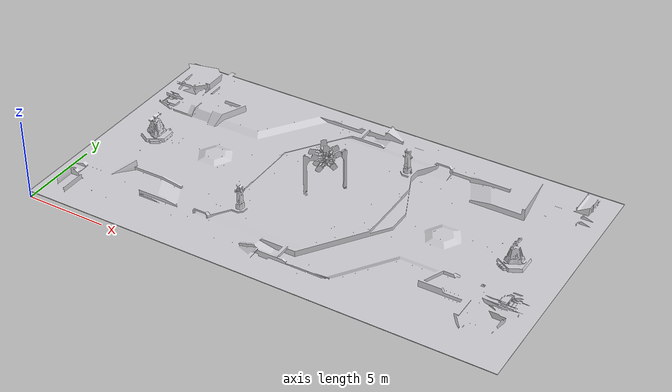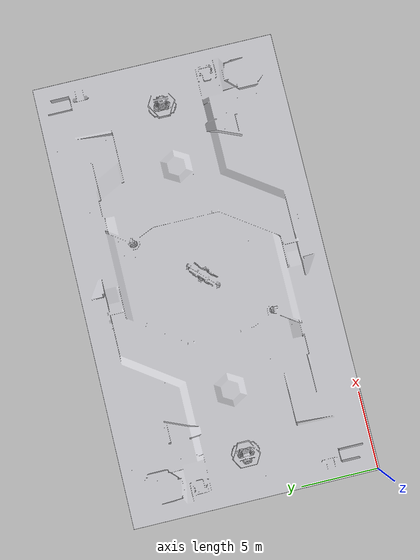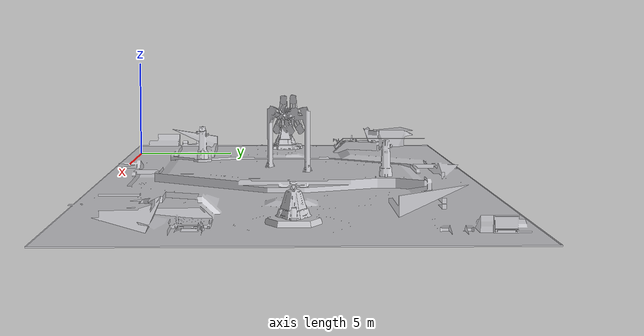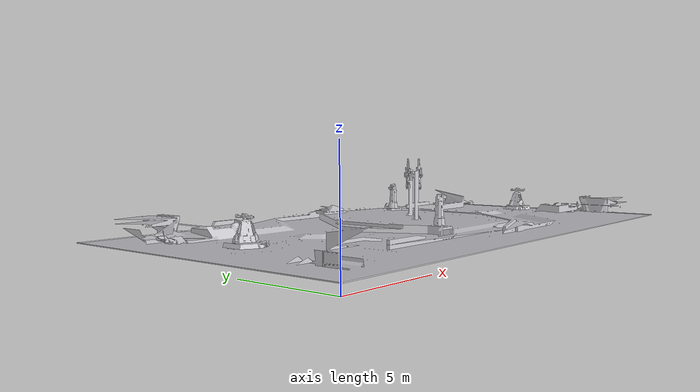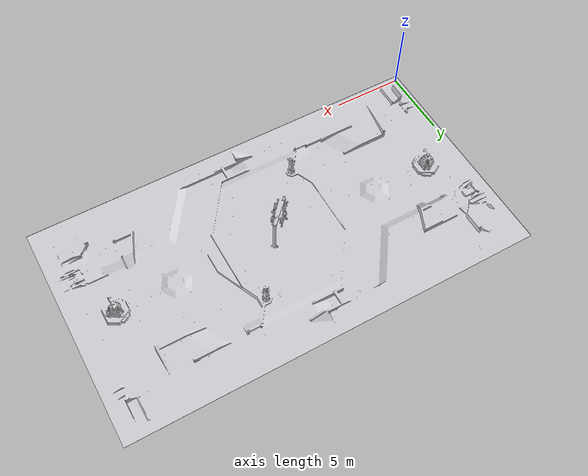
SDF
<?xml version='1.0'?>
<sdf version='1.6'>
  <model name='rmuc_2026'>
    <static>true</static>
    <link name='body'>
      <pose frame=''>14.5 8 0.2 0 0 0</pose>
      <self_collide>0</self_collide>
      <kinematic>0</kinematic>
      <gravity>1</gravity>
      <visual name='visual'>
        <cast_shadows>false</cast_shadows>
        <geometry>
          <mesh>
            <uri>model://rmuc_2026/meshes/rmuc_2026_nowall.stl</uri>
            <scale>1 1 1</scale>
          </mesh>
        </geometry>
        <material>
          <ambient>0.72 0.72 0.74 1</ambient>
          <diffuse>0.82 0.82 0.84 1</diffuse>
          <specular>0.0 0.0 0.0 1</specular>
          <emissive>0.22 0.22 0.23 1</emissive>
        </material>
      </visual>
      <!-- 视觉仍是官方 12 万三角 STL。整场 mesh 碰撞会把 Harmonic RTF 打到 16% 以下，本机 GUI 像卡死。
           碰撞改成贴地板的盒子（地板约 z=0.43）。墙/高台只看得到，暂不挡车。 -->
      <collision name='collision'>
        <pose>0 0 0.23 0 0 0</pose>
        <geometry>
          <box>
            <size>29.0 16.0 0.12</size>
          </box>
        </geometry>
      </collision>
    </link>
  </model>
</sdf>
